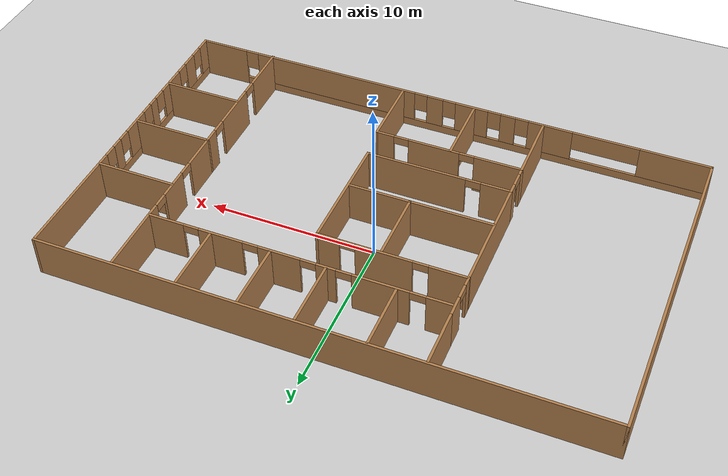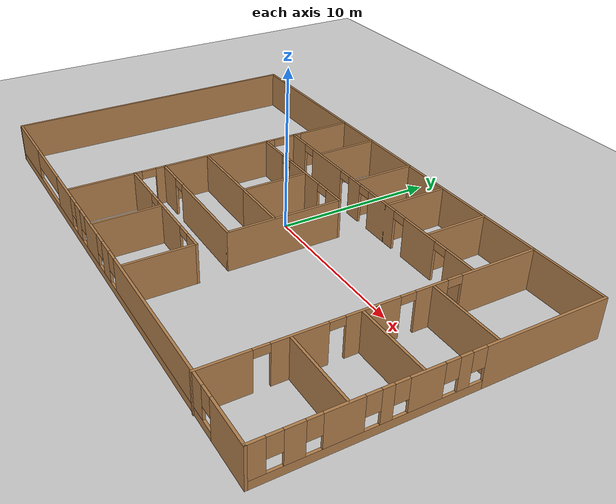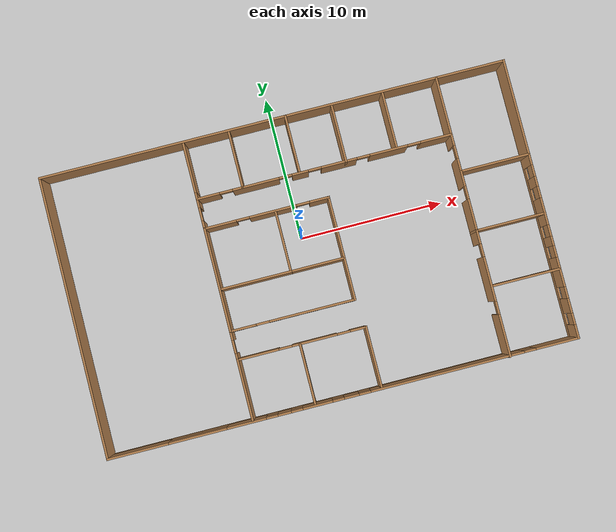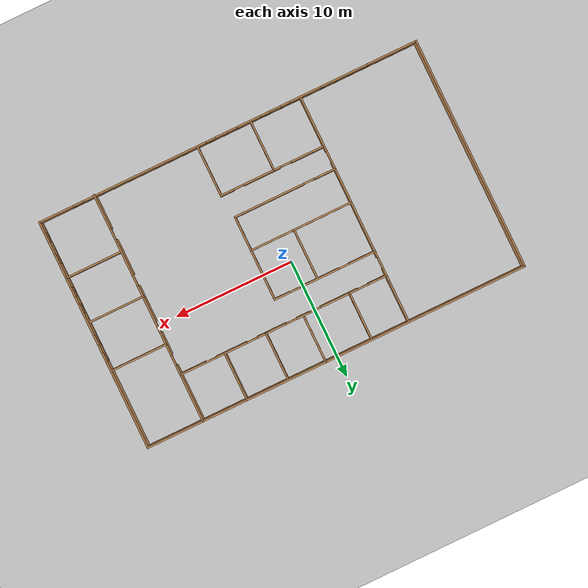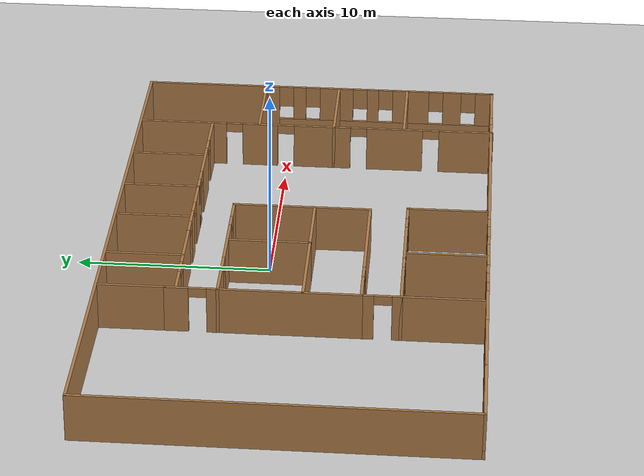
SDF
<sdf version="1.6">
 <world name="default">
  <model name="ground_plane">
   <static>1</static>
   <link name="link">
    <collision name="collision">
     <geometry><plane><normal>0 0 1</normal><size>100 100</size></plane></geometry>
     <surface><friction><ode><mu>100</mu><mu2>50</mu2></ode></friction></surface>
    </collision>
    <visual name="visual">
     <cast_shadows>0</cast_shadows>
     <geometry><plane><normal>0 0 1</normal><size>100 100</size></plane></geometry>
     <material>
      <script><uri>file://media/materials/scripts/gazebo.material</uri><name>Gazebo/Grey</name></script>
     </material>
    </visual>
   </link>
  </model>
  <model name="Offices">
   <pose>0.0747 -1.55761 0 0 -0 0</pose>
   <link name="Wall_18">
    <collision name="Wall_18_Collision">
     <geometry><box><size>19.5 0.15 2.5</size></box></geometry>
     <pose>0 0 1.25 0 -0 0</pose>
    </collision>
    <visual name="Wall_18_Visual">
     <pose>0 0 1.25 0 -0 0</pose>
     <geometry><box><size>19.5 0.15 2.5</size></box></geometry>
     <material>
      <script><uri>file://media/materials/scripts/gazebo.material</uri><name>Gazebo/Wood</name></script>
      <ambient>1 1 1 1</ambient>
     </material>
     <meta><layer>0</layer></meta>
    </visual>
    <pose>-16.175 0.026818 0 0 -0 1.5708</pose>
   </link>
   <link name="Wall_19">
    <collision name="Wall_19_Collision">
     <geometry><box><size>32.5 0.15 2.5</size></box></geometry>
     <pose>0 0 1.25 0 -0 0</pose>
    </collision>
    <visual name="Wall_19_Visual">
     <pose>0 0 1.25 0 -0 0</pose>
     <geometry><box><size>32.5 0.15 2.5</size></box></geometry>
     <material>
      <script><uri>file://media/materials/scripts/gazebo.material</uri><name>Gazebo/Wood</name></script>
      <ambient>1 1 1 1</ambient>
     </material>
     <meta><layer>0</layer></meta>
    </visual>
    <pose>0 9.70182 0 0 -0 0</pose>
   </link>
   <link name="Wall_20">
    <pose>16.175 0.026818 0 0 0 -1.5708</pose>
    <visual name="Wall_20_Visual_0">
     <pose>-6.04317 0 1.25 0 -0 0</pose>
     <geometry><box><size>7.41367 0.15 2.5</size></box></geometry>
     <material>
      <script><uri>file://media/materials/scripts/gazebo.material</uri><name>Gazebo/Wood</name></script>
      <ambient>1 1 1 1</ambient>
     </material>
     <meta><layer>0</layer></meta>
    </visual>
    <collision name="Wall_20_Collision_0">
     <geometry><box><size>7.41367 0.15 2.5</size></box></geometry>
     <pose>-6.04317 0 1.25 0 -0 0</pose>
    </collision>
    <visual name="Wall_20_Visual_1">
     <pose>3.70683 0 0.25 0 -0 0</pose>
     <geometry><box><size>12.0863 0.15 0.5</size></box></geometry>
     <material>
      <script><uri>file://media/materials/scripts/gazebo.material</uri><name>Gazebo/Wood</name></script>
      <ambient>1 1 1 1</ambient>
     </material>
     <meta><layer>0</layer></meta>
    </visual>
    <collision name="Wall_20_Collision_1">
     <geometry><box><size>12.0863 0.15 0.5</size></box></geometry>
     <pose>3.70683 0 0.25 0 -0 0</pose>
    </collision>
    <visual name="Wall_20_Visual_2">
     <pose>-1.18542 0 1.5 0 -0 0</pose>
     <geometry><box><size>0.701813 0.15 2</size></box></geometry>
     <material>
      <script><uri>file://media/materials/scripts/gazebo.material</uri><name>Gazebo/Wood</name></script>
      <ambient>1 1 1 1</ambient>
     </material>
     <meta><layer>0</layer></meta>
    </visual>
    <collision name="Wall_20_Collision_2">
     <geometry><box><size>0.701813 0.15 2</size></box></geometry>
     <pose>-1.18542 0 1.5 0 -0 0</pose>
    </collision>
    <visual name="Wall_20_Visual_3">
     <pose>0.906388 0 1.5 0 -0 0</pose>
     <geometry><box><size>1.88181 0.15 2</size></box></geometry>
     <material>
      <script><uri>file://media/materials/scripts/gazebo.material</uri><name>Gazebo/Wood</name></script>
      <ambient>1 1 1 1</ambient>
     </material>
     <meta><layer>0</layer></meta>
    </visual>
    <collision name="Wall_20_Collision_3">
     <geometry><box><size>1.88181 0.15 2</size></box></geometry>
     <pose>0.906388 0 1.5 0 -0 0</pose>
    </collision>
    <visual name="Wall_20_Visual_4">
     <pose>2.97138 0 1.5 0 -0 0</pose>
     <geometry><box><size>0.648177 0.15 2</size></box></geometry>
     <material>
      <script><uri>file://media/materials/scripts/gazebo.material</uri><name>Gazebo/Wood</name></script>
      <ambient>1 1 1 1</ambient>
     </material>
     <meta><layer>0</layer></meta>
    </visual>
    <collision name="Wall_20_Collision_4">
     <geometry><box><size>0.648177 0.15 2</size></box></geometry>
     <pose>2.97138 0 1.5 0 -0 0</pose>
    </collision>
    <visual name="Wall_20_Visual_5">
     <pose>5.11683 0 1.5 0 -0 0</pose>
     <geometry><box><size>2.04272 0.15 2</size></box></geometry>
     <material>
      <script><uri>file://media/materials/scripts/gazebo.material</uri><name>Gazebo/Wood</name></script>
      <ambient>1 1 1 1</ambient>
     </material>
     <meta><layer>0</layer></meta>
    </visual>
    <collision name="Wall_20_Collision_5">
     <geometry><box><size>2.04272 0.15 2</size></box></geometry>
     <pose>5.11683 0 1.5 0 -0 0</pose>
    </collision>
    <visual name="Wall_20_Visual_6">
     <pose>7.45 0 1.5 0 -0 0</pose>
     <geometry><box><size>1.02363 0.15 2</size></box></geometry>
     <material>
      <script><uri>file://media/materials/scripts/gazebo.material</uri><name>Gazebo/Wood</name></script>
      <ambient>1 1 1 1</ambient>
     </material>
     <meta><layer>0</layer></meta>
    </visual>
    <collision name="Wall_20_Collision_6">
     <geometry><box><size>1.02363 0.15 2</size></box></geometry>
     <pose>7.45 0 1.5 0 -0 0</pose>
    </collision>
    <visual name="Wall_20_Visual_7">
     <pose>9.25591 0 1.5 0 -0 0</pose>
     <geometry><box><size>0.988181 0.15 2</size></box></geometry>
     <material>
      <script><uri>file://media/materials/scripts/gazebo.material</uri><name>Gazebo/Wood</name></script>
      <ambient>1 1 1 1</ambient>
     </material>
     <meta><layer>0</layer></meta>
    </visual>
    <collision name="Wall_20_Collision_7">
     <geometry><box><size>0.988181 0.15 2</size></box></geometry>
     <pose>9.25591 0 1.5 0 -0 0</pose>
    </collision>
    <visual name="Wall_20_Visual_8">
     <pose>-1.93633 0 1.9 0 -0 0</pose>
     <geometry><box><size>0.8 0.15 1.2</size></box></geometry>
     <material>
      <script><uri>file://media/materials/scripts/gazebo.material</uri><name>Gazebo/Wood</name></script>
      <ambient>1 1 1 1</ambient>
     </material>
     <meta><layer>0</layer></meta>
    </visual>
    <collision name="Wall_20_Collision_8">
     <geometry><box><size>0.8 0.15 1.2</size></box></geometry>
     <pose>-1.93633 0 1.9 0 -0 0</pose>
    </collision>
    <visual name="Wall_20_Visual_9">
     <pose>-0.434516 0 1.9 0 -0 0</pose>
     <geometry><box><size>0.8 0.15 1.2</size></box></geometry>
     <material>
      <script><uri>file://media/materials/scripts/gazebo.material</uri><name>Gazebo/Wood</name></script>
      <ambient>1 1 1 1</ambient>
     </material>
     <meta><layer>0</layer></meta>
    </visual>
    <collision name="Wall_20_Collision_9">
     <geometry><box><size>0.8 0.15 1.2</size></box></geometry>
     <pose>-0.434516 0 1.9 0 -0 0</pose>
    </collision>
    <visual name="Wall_20_Visual_10">
     <pose>2.24729 0 1.9 0 -0 0</pose>
     <geometry><box><size>0.8 0.15 1.2</size></box></geometry>
     <material>
      <script><uri>file://media/materials/scripts/gazebo.material</uri><name>Gazebo/Wood</name></script>
      <ambient>1 1 1 1</ambient>
     </material>
     <meta><layer>0</layer></meta>
    </visual>
    <collision name="Wall_20_Collision_10">
     <geometry><box><size>0.8 0.15 1.2</size></box></geometry>
     <pose>2.24729 0 1.9 0 -0 0</pose>
    </collision>
    <visual name="Wall_20_Visual_11">
     <pose>3.69547 0 1.9 0 -0 0</pose>
     <geometry><box><size>0.8 0.15 1.2</size></box></geometry>
     <material>
      <script><uri>file://media/materials/scripts/gazebo.material</uri><name>Gazebo/Wood</name></script>
      <ambient>1 1 1 1</ambient>
     </material>
     <meta><layer>0</layer></meta>
    </visual>
    <collision name="Wall_20_Collision_11">
     <geometry><box><size>0.8 0.15 1.2</size></box></geometry>
     <pose>3.69547 0 1.9 0 -0 0</pose>
    </collision>
    <visual name="Wall_20_Visual_12">
     <pose>6.53819 0 1.9 0 -0 0</pose>
     <geometry><box><size>0.8 0.15 1.2</size></box></geometry>
     <material>
      <script><uri>file://media/materials/scripts/gazebo.material</uri><name>Gazebo/Wood</name></script>
      <ambient>1 1 1 1</ambient>
     </material>
     <meta><layer>0</layer></meta>
    </visual>
    <collision name="Wall_20_Collision_12">
     <geometry><box><size>0.8 0.15 1.2</size></box></geometry>
     <pose>6.53819 0 1.9 0 -0 0</pose>
    </collision>
    <visual name="Wall_20_Visual_13">
     <pose>8.36182 0 1.9 0 -0 0</pose>
     <geometry><box><size>0.8 0.15 1.2</size></box></geometry>
     <material>
      <script><uri>file://media/materials/scripts/gazebo.material</uri><name>Gazebo/Wood</name></script>
      <ambient>1 1 1 1</ambient>
     </material>
     <meta><layer>0</layer></meta>
    </visual>
    <collision name="Wall_20_Collision_13">
     <geometry><box><size>0.8 0.15 1.2</size></box></geometry>
     <pose>8.36182 0 1.9 0 -0 0</pose>
    </collision>
   </link>
   <link name="Wall_21">
    <pose>0 -9.64818 0 0 -0 3.14159</pose>
    <visual name="Wall_21_Visual_0">
     <pose>-14.7397 0 1.25 0 -0 0</pose>
     <geometry><box><size>3.02057 0.15 2.5</size></box></geometry>
     <material>
      <script><uri>file://media/materials/scripts/gazebo.material</uri><name>Gazebo/Wood</name></script>
      <ambient>1 1 1 1</ambient>
     </material>
     <meta><layer>0</layer></meta>
    </visual>
    <collision name="Wall_21_Collision_0">
     <geometry><box><size>3.02057 0.15 2.5</size></box></geometry>
     <pose>-14.7397 0 1.25 0 -0 0</pose>
    </collision>
    <visual name="Wall_21_Visual_1">
     <pose>1.51029 0 0.25 0 -0 0</pose>
     <geometry><box><size>29.4794 0.15 0.5</size></box></geometry>
     <material>
      <script><uri>file://media/materials/scripts/gazebo.material</uri><name>Gazebo/Wood</name></script>
      <ambient>1 1 1 1</ambient>
     </material>
     <meta><layer>0</layer></meta>
    </visual>
    <collision name="Wall_21_Collision_1">
     <geometry><box><size>29.4794 0.15 0.5</size></box></geometry>
     <pose>1.51029 0 0.25 0 -0 0</pose>
    </collision>
    <visual name="Wall_21_Visual_2">
     <pose>-7.14399 0 1.5 0 -0 0</pose>
     <geometry><box><size>10.5709 0.15 2</size></box></geometry>
     <material>
      <script><uri>file://media/materials/scripts/gazebo.material</uri><name>Gazebo/Wood</name></script>
      <ambient>1 1 1 1</ambient>
     </material>
     <meta><layer>0</layer></meta>
    </visual>
    <collision name="Wall_21_Collision_2">
     <geometry><box><size>10.5709 0.15 2</size></box></geometry>
     <pose>-7.14399 0 1.5 0 -0 0</pose>
    </collision>
    <visual name="Wall_21_Visual_3">
     <pose>-0.546741 0 1.5 0 -0 0</pose>
     <geometry><box><size>1.02363 0.15 2</size></box></geometry>
     <material>
      <script><uri>file://media/materials/scripts/gazebo.material</uri><name>Gazebo/Wood</name></script>
      <ambient>1 1 1 1</ambient>
     </material>
     <meta><layer>0</layer></meta>
    </visual>
    <collision name="Wall_21_Collision_3">
     <geometry><box><size>1.02363 0.15 2</size></box></geometry>
     <pose>-0.546741 0 1.5 0 -0 0</pose>
    </collision>
    <visual name="Wall_21_Visual_4">
     <pose>1.78643 0 1.5 0 -0 0</pose>
     <geometry><box><size>2.04272 0.15 2</size></box></geometry>
     <material>
      <script><uri>file://media/materials/scripts/gazebo.material</uri><name>Gazebo/Wood</name></script>
      <ambient>1 1 1 1</ambient>
     </material>
     <meta><layer>0</layer></meta>
    </visual>
    <collision name="Wall_21_Collision_4">
     <geometry><box><size>2.04272 0.15 2</size></box></geometry>
     <pose>1.78643 0 1.5 0 -0 0</pose>
    </collision>
    <visual name="Wall_21_Visual_5">
     <pose>4.06597 0 1.5 0 -0 0</pose>
     <geometry><box><size>0.916358 0.15 2</size></box></geometry>
     <material>
      <script><uri>file://media/materials/scripts/gazebo.material</uri><name>Gazebo/Wood</name></script>
      <ambient>1 1 1 1</ambient>
     </material>
     <meta><layer>0</layer></meta>
    </visual>
    <collision name="Wall_21_Collision_5">
     <geometry><box><size>0.916358 0.15 2</size></box></geometry>
     <pose>4.06597 0 1.5 0 -0 0</pose>
    </collision>
    <visual name="Wall_21_Visual_6">
     <pose>6.67187 0 1.5 0 -0 0</pose>
     <geometry><box><size>2.69544 0.15 2</size></box></geometry>
     <material>
      <script><uri>file://media/materials/scripts/gazebo.material</uri><name>Gazebo/Wood</name></script>
      <ambient>1 1 1 1</ambient>
     </material>
     <meta><layer>0</layer></meta>
    </visual>
    <collision name="Wall_21_Collision_6">
     <geometry><box><size>2.69544 0.15 2</size></box></geometry>
     <pose>6.67187 0 1.5 0 -0 0</pose>
    </collision>
    <visual name="Wall_21_Visual_7">
     <pose>14.1348 0 1.5 0 -0 0</pose>
     <geometry><box><size>4.23041 0.15 2</size></box></geometry>
     <material>
      <script><uri>file://media/materials/scripts/gazebo.material</uri><name>Gazebo/Wood</name></script>
      <ambient>1 1 1 1</ambient>
     </material>
     <meta><layer>0</layer></meta>
    </visual>
    <collision name="Wall_21_Collision_7">
     <geometry><box><size>4.23041 0.15 2</size></box></geometry>
     <pose>14.1348 0 1.5 0 -0 0</pose>
    </collision>
    <visual name="Wall_21_Visual_8">
     <pose>-12.8294 0 1.9 0 -0 0</pose>
     <geometry><box><size>0.8 0.15 1.2</size></box></geometry>
     <material>
      <script><uri>file://media/materials/scripts/gazebo.material</uri><name>Gazebo/Wood</name></script>
      <ambient>1 1 1 1</ambient>
     </material>
     <meta><layer>0</layer></meta>
    </visual>
    <collision name="Wall_21_Collision_8">
     <geometry><box><size>0.8 0.15 1.2</size></box></geometry>
     <pose>-12.8294 0 1.9 0 -0 0</pose>
    </collision>
    <visual name="Wall_21_Visual_9">
     <pose>-1.45856 0 1.9 0 -0 0</pose>
     <geometry><box><size>0.8 0.15 1.2</size></box></geometry>
     <material>
      <script><uri>file://media/materials/scripts/gazebo.material</uri><name>Gazebo/Wood</name></script>
      <ambient>1 1 1 1</ambient>
     </material>
     <meta><layer>0</layer></meta>
    </visual>
    <collision name="Wall_21_Collision_9">
     <geometry><box><size>0.8 0.15 1.2</size></box></geometry>
     <pose>-1.45856 0 1.9 0 -0 0</pose>
    </collision>
    <visual name="Wall_21_Visual_10">
     <pose>0.365075 0 1.9 0 -0 0</pose>
     <geometry><box><size>0.8 0.15 1.2</size></box></geometry>
     <material>
      <script><uri>file://media/materials/scripts/gazebo.material</uri><name>Gazebo/Wood</name></script>
      <ambient>1 1 1 1</ambient>
     </material>
     <meta><layer>0</layer></meta>
    </visual>
    <collision name="Wall_21_Collision_10">
     <geometry><box><size>0.8 0.15 1.2</size></box></geometry>
     <pose>0.365075 0 1.9 0 -0 0</pose>
    </collision>
    <visual name="Wall_21_Visual_11">
     <pose>3.20779 0 1.9 0 -0 0</pose>
     <geometry><box><size>0.8 0.15 1.2</size></box></geometry>
     <material>
      <script><uri>file://media/materials/scripts/gazebo.material</uri><name>Gazebo/Wood</name></script>
      <ambient>1 1 1 1</ambient>
     </material>
     <meta><layer>0</layer></meta>
    </visual>
    <collision name="Wall_21_Collision_11">
     <geometry><box><size>0.8 0.15 1.2</size></box></geometry>
     <pose>3.20779 0 1.9 0 -0 0</pose>
    </collision>
    <visual name="Wall_21_Visual_12">
     <pose>4.92415 0 1.9 0 -0 0</pose>
     <geometry><box><size>0.8 0.15 1.2</size></box></geometry>
     <material>
      <script><uri>file://media/materials/scripts/gazebo.material</uri><name>Gazebo/Wood</name></script>
      <ambient>1 1 1 1</ambient>
     </material>
     <meta><layer>0</layer></meta>
    </visual>
    <collision name="Wall_21_Collision_12">
     <geometry><box><size>0.8 0.15 1.2</size></box></geometry>
     <pose>4.92415 0 1.9 0 -0 0</pose>
    </collision>
    <visual name="Wall_21_Visual_13">
     <pose>10.0196 0 1.9 0 -0 0</pose>
     <geometry><box><size>4 0.15 1.2</size></box></geometry>
     <material>
      <script><uri>file://media/materials/scripts/gazebo.material</uri><name>Gazebo/Wood</name></script>
      <ambient>1 1 1 1</ambient>
     </material>
     <meta><layer>0</layer></meta>
    </visual>
    <collision name="Wall_21_Collision_13">
     <geometry><box><size>4 0.15 1.2</size></box></geometry>
     <pose>10.0196 0 1.9 0 -0 0</pose>
    </collision>
   </link>
   <link name="Wall_24">
    <pose>11.4476 -0.026818 0 0 -0 1.5708</pose>
    <visual name="Wall_24_Visual_0">
     <pose>-8.26182 0 1.25 0 -0 0</pose>
     <geometry><box><size>2.97636 0.15 2.5</size></box></geometry>
     <material>
      <script><uri>file://media/materials/scripts/gazebo.material</uri><name>Gazebo/Wood</name></script>
      <ambient>1 1 1 1</ambient>
     </material>
     <meta><layer>0</layer></meta>
    </visual>
    <collision name="Wall_24_Collision_0">
     <geometry><box><size>2.97636 0.15 2.5</size></box></geometry>
     <pose>-8.26182 0 1.25 0 -0 0</pose>
    </collision>
    <visual name="Wall_24_Visual_1">
     <pose>-4.3391 0 1.25 0 -0 0</pose>
     <geometry><box><size>3.06908 0.15 2.5</size></box></geometry>
     <material>
      <script><uri>file://media/materials/scripts/gazebo.material</uri><name>Gazebo/Wood</name></script>
      <ambient>1 1 1 1</ambient>
     </material>
     <meta><layer>0</layer></meta>
    </visual>
    <collision name="Wall_24_Collision_1">
     <geometry><box><size>3.06908 0.15 2.5</size></box></geometry>
     <pose>-4.3391 0 1.25 0 -0 0</pose>
    </collision>
    <visual name="Wall_24_Visual_2">
     <pose>-0.343209 0 1.25 0 -0 0</pose>
     <geometry><box><size>3.12271 0.15 2.5</size></box></geometry>
     <material>
      <script><uri>file://media/materials/scripts/gazebo.material</uri><name>Gazebo/Wood</name></script>
      <ambient>1 1 1 1</ambient>
     </material>
     <meta><layer>0</layer></meta>
    </visual>
    <collision name="Wall_24_Collision_2">
     <geometry><box><size>3.12271 0.15 2.5</size></box></geometry>
     <pose>-0.343209 0 1.25 0 -0 0</pose>
    </collision>
    <visual name="Wall_24_Visual_3">
     <pose>3.08951 0 1.25 0 -0 0</pose>
     <geometry><box><size>1.94272 0.15 2.5</size></box></geometry>
     <material>
      <script><uri>file://media/materials/scripts/gazebo.material</uri><name>Gazebo/Wood</name></script>
      <ambient>1 1 1 1</ambient>
     </material>
     <meta><layer>0</layer></meta>
    </visual>
    <collision name="Wall_24_Collision_3">
     <geometry><box><size>1.94272 0.15 2.5</size></box></geometry>
     <pose>3.08951 0 1.25 0 -0 0</pose>
    </collision>
    <visual name="Wall_24_Visual_4">
     <pose>7.35543 0 1.25 0 -0 0</pose>
     <geometry><box><size>4.78913 0.15 2.5</size></box></geometry>
     <material>
      <script><uri>file://media/materials/scripts/gazebo.material</uri><name>Gazebo/Wood</name></script>
      <ambient>1 1 1 1</ambient>
     </material>
     <meta><layer>0</layer></meta>
    </visual>
    <collision name="Wall_24_Collision_4">
     <geometry><box><size>4.78913 0.15 2.5</size></box></geometry>
     <pose>7.35543 0 1.25 0 -0 0</pose>
    </collision>
    <visual name="Wall_24_Visual_5">
     <pose>-6.32364 0 2.25 0 -0 0</pose>
     <geometry><box><size>0.9 0.15 0.5</size></box></geometry>
     <material>
      <script><uri>file://media/materials/scripts/gazebo.material</uri><name>Gazebo/Wood</name></script>
      <ambient>1 1 1 1</ambient>
     </material>
     <meta><layer>0</layer></meta>
    </visual>
    <collision name="Wall_24_Collision_5">
     <geometry><box><size>0.9 0.15 0.5</size></box></geometry>
     <pose>-6.32364 0 2.25 0 -0 0</pose>
    </collision>
    <visual name="Wall_24_Visual_6">
     <pose>-2.35457 0 2.25 0 -0 0</pose>
     <geometry><box><size>0.9 0.15 0.5</size></box></geometry>
     <material>
      <script><uri>file://media/materials/scripts/gazebo.material</uri><name>Gazebo/Wood</name></script>
      <ambient>1 1 1 1</ambient>
     </material>
     <meta><layer>0</layer></meta>
    </visual>
    <collision name="Wall_24_Collision_6">
     <geometry><box><size>0.9 0.15 0.5</size></box></geometry>
     <pose>-2.35457 0 2.25 0 -0 0</pose>
    </collision>
    <visual name="Wall_24_Visual_7">
     <pose>1.66815 0 2.25 0 -0 0</pose>
     <geometry><box><size>0.9 0.15 0.5</size></box></geometry>
     <material>
      <script><uri>file://media/materials/scripts/gazebo.material</uri><name>Gazebo/Wood</name></script>
      <ambient>1 1 1 1</ambient>
     </material>
     <meta><layer>0</layer></meta>
    </visual>
    <collision name="Wall_24_Collision_7">
     <geometry><box><size>0.9 0.15 0.5</size></box></geometry>
     <pose>1.66815 0 2.25 0 -0 0</pose>
    </collision>
    <visual name="Wall_24_Visual_8">
     <pose>4.51087 0 2.25 0 -0 0</pose>
     <geometry><box><size>0.9 0.15 0.5</size></box></geometry>
     <material>
      <script><uri>file://media/materials/scripts/gazebo.material</uri><name>Gazebo/Wood</name></script>
      <ambient>1 1 1 1</ambient>
     </material>
     <meta><layer>0</layer></meta>
    </visual>
    <collision name="Wall_24_Collision_8">
     <geometry><box><size>0.9 0.15 0.5</size></box></geometry>
     <pose>4.51087 0 2.25 0 -0 0</pose>
    </collision>
   </link>
   <link name="Wall_26">
    <collision name="Wall_26_Collision">
     <geometry><box><size>4.75 0.15 2.5</size></box></geometry>
     <pose>0 0 1.25 0 -0 0</pose>
    </collision>
    <visual name="Wall_26_Visual">
     <pose>0 0 1.25 0 -0 0</pose>
     <geometry><box><size>4.75 0.15 2.5</size></box></geometry>
     <material>
      <script><uri>file://media/materials/scripts/gazebo.material</uri><name>Gazebo/Wood</name></script>
      <ambient>1 1 1 1</ambient>
     </material>
     <meta><layer>0</layer></meta>
    </visual>
    <pose>13.8013 -4.87456 0 0 -0 0</pose>
   </link>
   <link name="Wall_28">
    <collision name="Wall_28_Collision">
     <geometry><box><size>4.75 0.15 2.5</size></box></geometry>
     <pose>0 0 1.25 0 -0 0</pose>
    </collision>
    <visual name="Wall_28_Visual">
     <pose>0 0 1.25 0 -0 0</pose>
     <geometry><box><size>4.75 0.15 2.5</size></box></geometry>
     <material>
      <script><uri>file://media/materials/scripts/gazebo.material</uri><name>Gazebo/Wood</name></script>
      <ambient>1 1 1 1</ambient>
     </material>
     <meta><layer>0</layer></meta>
    </visual>
    <pose>13.7476 -1.01276 0 0 -0 0</pose>
   </link>
   <link name="Wall_30">
    <collision name="Wall_30_Collision">
     <geometry><box><size>4.75 0.15 2.5</size></box></geometry>
     <pose>0 0 1.25 0 -0 0</pose>
    </collision>
    <visual name="Wall_30_Visual">
     <pose>0 0 1.25 0 -0 0</pose>
     <geometry><box><size>4.75 0.15 2.5</size></box></geometry>
     <material>
      <script><uri>file://media/materials/scripts/gazebo.material</uri><name>Gazebo/Wood</name></script>
      <ambient>1 1 1 1</ambient>
     </material>
     <meta><layer>0</layer></meta>
    </visual>
    <pose>13.8013 3.11723 0 0 -0 0</pose>
   </link>
   <link name="Wall_32">
    <collision name="Wall_32_Collision">
     <geometry><box><size>4.25 0.15 2.5</size></box></geometry>
     <pose>0 0 1.25 0 -0 0</pose>
    </collision>
    <visual name="Wall_32_Visual">
     <pose>0 0 1.25 0 -0 0</pose>
     <geometry><box><size>4.25 0.15 2.5</size></box></geometry>
     <material>
      <script><uri>file://media/materials/scripts/gazebo.material</uri><name>Gazebo/Wood</name></script>
      <ambient>1 1 1 1</ambient>
     </material>
     <meta><layer>0</layer></meta>
    </visual>
    <pose>2.61644 -7.47291 0 0 -0 1.5708</pose>
   </link>
   <link name="Wall_33">
    <pose>-1.80856 -5.42291 0 0 -0 3.14159</pose>
    <visual name="Wall_33_Visual_0">
     <pose>-3.92083 0 1.25 0 -0 0</pose>
     <geometry><box><size>1.15834 0.15 2.5</size></box></geometry>
     <material>
      <script><uri>file://media/materials/scripts/gazebo.material</uri><name>Gazebo/Wood</name></script>
      <ambient>1 1 1 1</ambient>
     </material>
     <meta><layer>0</layer></meta>
    </visual>
    <collision name="Wall_33_Collision_0">
     <geometry><box><size>1.15834 0.15 2.5</size></box></geometry>
     <pose>-3.92083 0 1.25 0 -0 0</pose>
    </collision>
    <visual name="Wall_33_Visual_1">
     <pose>-0.880306 0 1.25 0 -0 0</pose>
     <geometry><box><size>3.12271 0.15 2.5</size></box></geometry>
     <material>
      <script><uri>file://media/materials/scripts/gazebo.material</uri><name>Gazebo/Wood</name></script>
      <ambient>1 1 1 1</ambient>
     </material>
     <meta><layer>0</layer></meta>
    </visual>
    <collision name="Wall_33_Collision_1">
     <geometry><box><size>3.12271 0.15 2.5</size></box></geometry>
     <pose>-0.880306 0 1.25 0 -0 0</pose>
    </collision>
    <visual name="Wall_33_Visual_2">
     <pose>3.04053 0 1.25 0 -0 0</pose>
     <geometry><box><size>2.91895 0.15 2.5</size></box></geometry>
     <material>
      <script><uri>file://media/materials/scripts/gazebo.material</uri><name>Gazebo/Wood</name></script>
      <ambient>1 1 1 1</ambient>
     </material>
     <meta><layer>0</layer></meta>
    </visual>
    <collision name="Wall_33_Collision_2">
     <geometry><box><size>2.91895 0.15 2.5</size></box></geometry>
     <pose>3.04053 0 1.25 0 -0 0</pose>
    </collision>
    <visual name="Wall_33_Visual_3">
     <pose>-2.89166 0 2.25 0 -0 0</pose>
     <geometry><box><size>0.9 0.15 0.5</size></box></geometry>
     <material>
      <script><uri>file://media/materials/scripts/gazebo.material</uri><name>Gazebo/Wood</name></script>
      <ambient>1 1 1 1</ambient>
     </material>
     <meta><layer>0</layer></meta>
    </visual>
    <collision name="Wall_33_Collision_3">
     <geometry><box><size>0.9 0.15 0.5</size></box></geometry>
     <pose>-2.89166 0 2.25 0 -0 0</pose>
    </collision>
    <visual name="Wall_33_Visual_4">
     <pose>1.13105 0 2.25 0 -0 0</pose>
     <geometry><box><size>0.9 0.15 0.5</size></box></geometry>
     <material>
      <script><uri>file://media/materials/scripts/gazebo.material</uri><name>Gazebo/Wood</name></script>
      <ambient>1 1 1 1</ambient>
     </material>
     <meta><layer>0</layer></meta>
    </visual>
    <collision name="Wall_33_Collision_4">
     <geometry><box><size>0.9 0.15 0.5</size></box></geometry>
     <pose>1.13105 0 2.25 0 -0 0</pose>
    </collision>
   </link>
   <link name="Wall_34">
    <collision name="Wall_34_Collision">
     <geometry><box><size>4.25 0.15 2.5</size></box></geometry>
     <pose>0 0 1.25 0 -0 0</pose>
    </collision>
    <visual name="Wall_34_Visual">
     <pose>0 0 1.25 0 -0 0</pose>
     <geometry><box><size>4.25 0.15 2.5</size></box></geometry>
     <material>
      <script><uri>file://media/materials/scripts/gazebo.material</uri><name>Gazebo/Wood</name></script>
      <ambient>1 1 1 1</ambient>
     </material>
     <meta><layer>0</layer></meta>
    </visual>
    <pose>-6.23356 -7.47291 0 0 0 -1.5708</pose>
   </link>
   <link name="Wall_38">
    <collision name="Wall_38_Collision">
     <geometry><box><size>4.25 0.15 2.5</size></box></geometry>
     <pose>0 0 1.25 0 -0 0</pose>
    </collision>
    <visual name="Wall_38_Visual">
     <pose>0 0 1.25 0 -0 0</pose>
     <geometry><box><size>4.25 0.15 2.5</size></box></geometry>
     <material>
      <script><uri>file://media/materials/scripts/gazebo.material</uri><name>Gazebo/Wood</name></script>
      <ambient>1 1 1 1</ambient>
     </material>
     <meta><layer>0</layer></meta>
    </visual>
    <pose>-1.94264 -7.49656 0 0 0 -1.5708</pose>
   </link>
   <link name="Wall_40">
    <pose>-1.93353 -3.46202 0 0 -0 0</pose>
    <visual name="Wall_40_Visual_0">
     <pose>-3.4519 0 1.25 0 -0 0</pose>
     <geometry><box><size>1.8462 0.15 2.5</size></box></geometry>
     <material>
      <script><uri>file://media/materials/scripts/gazebo.material</uri><name>Gazebo/Wood</name></script>
      <ambient>1 1 1 1</ambient>
     </material>
     <meta><layer>0</layer></meta>
    </visual>
    <collision name="Wall_40_Collision_0">
     <geometry><box><size>1.8462 0.15 2.5</size></box></geometry>
     <pose>-3.4519 0 1.25 0 -0 0</pose>
    </collision>
    <visual name="Wall_40_Visual_1">
     <pose>1.3731 0 1.25 0 -0 0</pose>
     <geometry><box><size>6.0038 0.15 2.5</size></box></geometry>
     <material>
      <script><uri>file://media/materials/scripts/gazebo.material</uri><name>Gazebo/Wood</name></script>
      <ambient>1 1 1 1</ambient>
     </material>
     <meta><layer>0</layer></meta>
    </visual>
    <collision name="Wall_40_Collision_1">
     <geometry><box><size>6.0038 0.15 2.5</size></box></geometry>
     <pose>1.3731 0 1.25 0 -0 0</pose>
    </collision>
    <visual name="Wall_40_Visual_2">
     <pose>-2.0788 0 2.25 0 -0 0</pose>
     <geometry><box><size>0.9 0.15 0.5</size></box></geometry>
     <material>
      <script><uri>file://media/materials/scripts/gazebo.material</uri><name>Gazebo/Wood</name></script>
      <ambient>1 1 1 1</ambient>
     </material>
     <meta><layer>0</layer></meta>
    </visual>
    <collision name="Wall_40_Collision_2">
     <geometry><box><size>0.9 0.15 0.5</size></box></geometry>
     <pose>-2.0788 0 2.25 0 -0 0</pose>
    </collision>
   </link>
   <link name="Wall_49">
    <collision name="Wall_49_Collision">
     <geometry><box><size>7.25 0.15 2.5</size></box></geometry>
     <pose>0 0 1.25 0 -0 0</pose>
    </collision>
    <visual name="Wall_49_Visual">
     <pose>0 0 1.25 0 -0 0</pose>
     <geometry><box><size>7.25 0.15 2.5</size></box></geometry>
     <material>
      <script><uri>file://media/materials/scripts/gazebo.material</uri><name>Gazebo/Wood</name></script>
      <ambient>1 1 1 1</ambient>
     </material>
     <meta><layer>0</layer></meta>
    </visual>
    <pose>2.36647 0.08798 0 0 -0 1.5708</pose>
   </link>
   <link name="Wall_50">
    <pose>-1.93353 3.63798 0 0 -0 3.14159</pose>
    <visual name="Wall_50_Visual_0">
     <pose>-3.67945 0 1.25 0 -0 0</pose>
     <geometry><box><size>1.39109 0.15 2.5</size></box></geometry>
     <material>
      <script><uri>file://media/materials/scripts/gazebo.material</uri><name>Gazebo/Wood</name></script>
      <ambient>1 1 1 1</ambient>
     </material>
     <meta><layer>0</layer></meta>
    </visual>
    <collision name="Wall_50_Collision_0">
     <geometry><box><size>1.39109 0.15 2.5</size></box></geometry>
     <pose>-3.67945 0 1.25 0 -0 0</pose>
    </collision>
    <visual name="Wall_50_Visual_1">
     <pose>-0.442097 0 1.25 0 -0 0</pose>
     <geometry><box><size>3.28362 0.15 2.5</size></box></geometry>
     <material>
      <script><uri>file://media/materials/scripts/gazebo.material</uri><name>Gazebo/Wood</name></script>
      <ambient>1 1 1 1</ambient>
     </material>
     <meta><layer>0</layer></meta>
    </visual>
    <collision name="Wall_50_Collision_1">
     <geometry><box><size>3.28362 0.15 2.5</size></box></geometry>
     <pose>-0.442097 0 1.25 0 -0 0</pose>
    </collision>
    <visual name="Wall_50_Visual_2">
     <pose>3.23736 0 1.25 0 -0 0</pose>
     <geometry><box><size>2.27529 0.15 2.5</size></box></geometry>
     <material>
      <script><uri>file://media/materials/scripts/gazebo.material</uri><name>Gazebo/Wood</name></script>
      <ambient>1 1 1 1</ambient>
     </material>
     <meta><layer>0</layer></meta>
    </visual>
    <collision name="Wall_50_Collision_2">
     <geometry><box><size>2.27529 0.15 2.5</size></box></geometry>
     <pose>3.23736 0 1.25 0 -0 0</pose>
    </collision>
    <visual name="Wall_50_Visual_3">
     <pose>-2.53391 0 2.25 0 -0 0</pose>
     <geometry><box><size>0.9 0.15 0.5</size></box></geometry>
     <material>
      <script><uri>file://media/materials/scripts/gazebo.material</uri><name>Gazebo/Wood</name></script>
      <ambient>1 1 1 1</ambient>
     </material>
     <meta><layer>0</layer></meta>
    </visual>
    <collision name="Wall_50_Collision_3">
     <geometry><box><size>0.9 0.15 0.5</size></box></geometry>
     <pose>-2.53391 0 2.25 0 -0 0</pose>
    </collision>
    <visual name="Wall_50_Visual_4">
     <pose>1.64971 0 2.25 0 -0 0</pose>
     <geometry><box><size>0.9 0.15 0.5</size></box></geometry>
     <material>
      <script><uri>file://media/materials/scripts/gazebo.material</uri><name>Gazebo/Wood</name></script>
      <ambient>1 1 1 1</ambient>
     </material>
     <meta><layer>0</layer></meta>
    </visual>
    <collision name="Wall_50_Collision_4">
     <geometry><box><size>0.9 0.15 0.5</size></box></geometry>
     <pose>1.64971 0 2.25 0 -0 0</pose>
    </collision>
   </link>
   <link name="Wall_53">
    <collision name="Wall_53_Collision">
     <geometry><box><size>7.25 0.15 2.5</size></box></geometry>
     <pose>0 0 1.25 0 -0 0</pose>
    </collision>
    <visual name="Wall_53_Visual">
     <pose>0 0 1.25 0 -0 0</pose>
     <geometry><box><size>7.25 0.15 2.5</size></box></geometry>
     <material>
      <script><uri>file://media/materials/scripts/gazebo.material</uri><name>Gazebo/Wood</name></script>
      <ambient>1 1 1 1</ambient>
     </material>
     <meta><layer>0</layer></meta>
    </visual>
    <pose>-6.23353 0.08798 0 0 0 -1.5708</pose>
   </link>
   <link name="Wall_56">
    <pose>-6.23355 -4.44247 0 0 -0 1.57078</pose>
    <visual name="Wall_56_Visual_0">
     <pose>-0.794908 0 1.25 0 -0 0</pose>
     <geometry><box><size>0.521074 0.15 2.5</size></box></geometry>
     <material>
      <script><uri>file://media/materials/scripts/gazebo.material</uri><name>Gazebo/Wood</name></script>
      <ambient>1 1 1 1</ambient>
     </material>
     <meta><layer>0</layer></meta>
    </visual>
    <collision name="Wall_56_Collision_0">
     <geometry><box><size>0.521074 0.15 2.5</size></box></geometry>
     <pose>-0.794908 0 1.25 0 -0 0</pose>
    </collision>
    <visual name="Wall_56_Visual_1">
     <pose>0.710537 0 1.25 0 -0 0</pose>
     <geometry><box><size>0.689816 0.15 2.5</size></box></geometry>
     <material>
      <script><uri>file://media/materials/scripts/gazebo.material</uri><name>Gazebo/Wood</name></script>
      <ambient>1 1 1 1</ambient>
     </material>
     <meta><layer>0</layer></meta>
    </visual>
    <collision name="Wall_56_Collision_1">
     <geometry><box><size>0.689816 0.15 2.5</size></box></geometry>
     <pose>0.710537 0 1.25 0 -0 0</pose>
    </collision>
    <visual name="Wall_56_Visual_2">
     <pose>-0.084371 0 2.25 0 -0 0</pose>
     <geometry><box><size>0.9 0.15 0.5</size></box></geometry>
     <material>
      <script><uri>file://media/materials/scripts/gazebo.material</uri><name>Gazebo/Wood</name></script>
      <ambient>1 1 1 1</ambient>
     </material>
     <meta><layer>0</layer></meta>
    </visual>
    <collision name="Wall_56_Collision_2">
     <geometry><box><size>0.9 0.15 0.5</size></box></geometry>
     <pose>-0.084371 0 2.25 0 -0 0</pose>
    </collision>
   </link>
   <link name="Wall_58">
    <pose>-6.23353 4.93798 0 0 -0 1.5708</pose>
    <visual name="Wall_58_Visual_0">
     <pose>-1.05901 0 1.25 0 -0 0</pose>
     <geometry><box><size>0.631977 0.15 2.5</size></box></geometry>
     <material>
      <script><uri>file://media/materials/scripts/gazebo.material</uri><name>Gazebo/Wood</name></script>
      <ambient>1 1 1 1</ambient>
     </material>
     <meta><layer>0</layer></meta>
    </visual>
    <collision name="Wall_58_Collision_0">
     <geometry><box><size>0.631977 0.15 2.5</size></box></geometry>
     <pose>-1.05901 0 1.25 0 -0 0</pose>
    </collision>
    <visual name="Wall_58_Visual_1">
     <pose>0.765989 0 1.25 0 -0 0</pose>
     <geometry><box><size>1.21802 0.15 2.5</size></box></geometry>
     <material>
      <script><uri>file://media/materials/scripts/gazebo.material</uri><name>Gazebo/Wood</name></script>
      <ambient>1 1 1 1</ambient>
     </material>
     <meta><layer>0</layer></meta>
    </visual>
    <collision name="Wall_58_Collision_1">
     <geometry><box><size>1.21802 0.15 2.5</size></box></geometry>
     <pose>0.765989 0 1.25 0 -0 0</pose>
    </collision>
    <visual name="Wall_58_Visual_2">
     <pose>-0.293023 0 2.25 0 -0 0</pose>
     <geometry><box><size>0.9 0.15 0.5</size></box></geometry>
     <material>
      <script><uri>file://media/materials/scripts/gazebo.material</uri><name>Gazebo/Wood</name></script>
      <ambient>1 1 1 1</ambient>
     </material>
     <meta><layer>0</layer></meta>
    </visual>
    <collision name="Wall_58_Collision_2">
     <geometry><box><size>0.9 0.15 0.5</size></box></geometry>
     <pose>-0.293023 0 2.25 0 -0 0</pose>
    </collision>
   </link>
   <link name="Wall_59">
    <collision name="Wall_59_Collision">
     <geometry><box><size>3.5 0.15 2.5</size></box></geometry>
     <pose>0 0 1.25 0 -0 0</pose>
    </collision>
    <visual name="Wall_59_Visual">
     <pose>0 0 1.25 0 -0 0</pose>
     <geometry><box><size>3.5 0.15 2.5</size></box></geometry>
     <material>
      <script><uri>file://media/materials/scripts/gazebo.material</uri><name>Gazebo/Wood</name></script>
      <ambient>1 1 1 1</ambient>
     </material>
     <meta><layer>0</layer></meta>
    </visual>
    <pose>-6.23353 7.91298 0 0 -0 1.5708</pose>
   </link>
   <link name="Wall_62">
    <pose>2.56647 5.70977 0 0 -0 0</pose>
    <visual name="Wall_62_Visual_0">
     <pose>-8.05917 0 1.25 0 -0 0</pose>
     <geometry><box><size>1.63165 0.15 2.5</size></box></geometry>
     <material>
      <script><uri>file://media/materials/scripts/gazebo.material</uri><name>Gazebo/Wood</name></script>
      <ambient>1 1 1 1</ambient>
     </material>
     <meta><layer>0</layer></meta>
    </visual>
    <collision name="Wall_62_Collision_0">
     <geometry><box><size>1.63165 0.15 2.5</size></box></geometry>
     <pose>-8.05917 0 1.25 0 -0 0</pose>
    </collision>
    <visual name="Wall_62_Visual_1">
     <pose>-4.72835 0 1.25 0 -0 0</pose>
     <geometry><box><size>3.22999 0.15 2.5</size></box></geometry>
     <material>
      <script><uri>file://media/materials/scripts/gazebo.material</uri><name>Gazebo/Wood</name></script>
      <ambient>1 1 1 1</ambient>
     </material>
     <meta><layer>0</layer></meta>
    </visual>
    <collision name="Wall_62_Collision_1">
     <geometry><box><size>3.22999 0.15 2.5</size></box></geometry>
     <pose>-4.72835 0 1.25 0 -0 0</pose>
    </collision>
    <visual name="Wall_62_Visual_2">
     <pose>-1.64427 0 1.25 0 -0 0</pose>
     <geometry><box><size>1.13817 0.15 2.5</size></box></geometry>
     <material>
      <script><uri>file://media/materials/scripts/gazebo.material</uri><name>Gazebo/Wood</name></script>
      <ambient>1 1 1 1</ambient>
     </material>
     <meta><layer>0</layer></meta>
    </visual>
    <collision name="Wall_62_Collision_2">
     <geometry><box><size>1.13817 0.15 2.5</size></box></geometry>
     <pose>-1.64427 0 1.25 0 -0 0</pose>
    </collision>
    <visual name="Wall_62_Visual_3">
     <pose>1.06435 0 1.25 0 -0 0</pose>
     <geometry><box><size>2.47908 0.15 2.5</size></box></geometry>
     <material>
      <script><uri>file://media/materials/scripts/gazebo.material</uri><name>Gazebo/Wood</name></script>
      <ambient>1 1 1 1</ambient>
     </material>
     <meta><layer>0</layer></meta>
    </visual>
    <collision name="Wall_62_Collision_3">
     <geometry><box><size>2.47908 0.15 2.5</size></box></geometry>
     <pose>1.06435 0 1.25 0 -0 0</pose>
    </collision>
    <visual name="Wall_62_Visual_4">
     <pose>4.52389 0 1.25 0 -0 0</pose>
     <geometry><box><size>2.63999 0.15 2.5</size></box></geometry>
     <material>
      <script><uri>file://media/materials/scripts/gazebo.material</uri><name>Gazebo/Wood</name></script>
      <ambient>1 1 1 1</ambient>
     </material>
     <meta><layer>0</layer></meta>
    </visual>
    <collision name="Wall_62_Collision_4">
     <geometry><box><size>2.63999 0.15 2.5</size></box></geometry>
     <pose>4.52389 0 1.25 0 -0 0</pose>
    </collision>
    <visual name="Wall_62_Visual_5">
     <pose>7.80944 0 1.25 0 -0 0</pose>
     <geometry><box><size>2.13112 0.15 2.5</size></box></geometry>
     <material>
      <script><uri>file://media/materials/scripts/gazebo.material</uri><name>Gazebo/Wood</name></script>
      <ambient>1 1 1 1</ambient>
     </material>
     <meta><layer>0</layer></meta>
    </visual>
    <collision name="Wall_62_Collision_5">
     <geometry><box><size>2.13112 0.15 2.5</size></box></geometry>
     <pose>7.80944 0 1.25 0 -0 0</pose>
    </collision>
    <visual name="Wall_62_Visual_6">
     <pose>-6.79335 0 2.25 0 -0 0</pose>
     <geometry><box><size>0.9 0.15 0.5</size></box></geometry>
     <material>
      <script><uri>file://media/materials/scripts/gazebo.material</uri><name>Gazebo/Wood</name></script>
      <ambient>1 1 1 1</ambient>
     </material>
     <meta><layer>0</layer></meta>
    </visual>
    <collision name="Wall_62_Collision_6">
     <geometry><box><size>0.9 0.15 0.5</size></box></geometry>
     <pose>-6.79335 0 2.25 0 -0 0</pose>
    </collision>
    <visual name="Wall_62_Visual_7">
     <pose>-2.66336 0 2.25 0 -0 0</pose>
     <geometry><box><size>0.9 0.15 0.5</size></box></geometry>
     <material>
      <script><uri>file://media/materials/scripts/gazebo.material</uri><name>Gazebo/Wood</name></script>
      <ambient>1 1 1 1</ambient>
     </material>
     <meta><layer>0</layer></meta>
    </visual>
    <collision name="Wall_62_Collision_7">
     <geometry><box><size>0.9 0.15 0.5</size></box></geometry>
     <pose>-2.66336 0 2.25 0 -0 0</pose>
    </collision>
    <visual name="Wall_62_Visual_8">
     <pose>-0.625186 0 2.25 0 -0 0</pose>
     <geometry><box><size>0.9 0.15 0.5</size></box></geometry>
     <material>
      <script><uri>file://media/materials/scripts/gazebo.material</uri><name>Gazebo/Wood</name></script>
      <ambient>1 1 1 1</ambient>
     </material>
     <meta><layer>0</layer></meta>
    </visual>
    <collision name="Wall_62_Collision_8">
     <geometry><box><size>0.9 0.15 0.5</size></box></geometry>
     <pose>-0.625186 0 2.25 0 -0 0</pose>
    </collision>
    <visual name="Wall_62_Visual_9">
     <pose>2.75389 0 2.25 0 -0 0</pose>
     <geometry><box><size>0.9 0.15 0.5</size></box></geometry>
     <material>
      <script><uri>file://media/materials/scripts/gazebo.material</uri><name>Gazebo/Wood</name></script>
      <ambient>1 1 1 1</ambient>
     </material>
     <meta><layer>0</layer></meta>
    </visual>
    <collision name="Wall_62_Collision_9">
     <geometry><box><size>0.9 0.15 0.5</size></box></geometry>
     <pose>2.75389 0 2.25 0 -0 0</pose>
    </collision>
    <visual name="Wall_62_Visual_10">
     <pose>6.29388 0 2.25 0 -0 0</pose>
     <geometry><box><size>0.9 0.15 0.5</size></box></geometry>
     <material>
      <script><uri>file://media/materials/scripts/gazebo.material</uri><name>Gazebo/Wood</name></script>
      <ambient>1 1 1 1</ambient>
     </material>
     <meta><layer>0</layer></meta>
    </visual>
    <collision name="Wall_62_Collision_10">
     <geometry><box><size>0.9 0.15 0.5</size></box></geometry>
     <pose>6.29388 0 2.25 0 -0 0</pose>
    </collision>
   </link>
   <link name="Wall_64">
    <collision name="Wall_64_Collision">
     <geometry><box><size>4 0.15 2.5</size></box></geometry>
     <pose>0 0 1.25 0 -0 0</pose>
    </collision>
    <visual name="Wall_64_Visual">
     <pose>0 0 1.25 0 -0 0</pose>
     <geometry><box><size>4 0.15 2.5</size></box></geometry>
     <material>
      <script><uri>file://media/materials/scripts/gazebo.material</uri><name>Gazebo/Wood</name></script>
      <ambient>1 1 1 1</ambient>
     </material>
     <meta><layer>0</layer></meta>
    </visual>
    <pose>-3.069 7.68841 0 0 -0 1.5708</pose>
   </link>
   <link name="Wall_66">
    <collision name="Wall_66_Collision">
     <geometry><box><size>4 0.15 2.5</size></box></geometry>
     <pose>0 0 1.25 0 -0 0</pose>
    </collision>
    <visual name="Wall_66_Visual">
     <pose>0 0 1.25 0 -0 0</pose>
     <geometry><box><size>4 0.15 2.5</size></box></geometry>
     <material>
      <script><uri>file://media/materials/scripts/gazebo.material</uri><name>Gazebo/Wood</name></script>
      <ambient>1 1 1 1</ambient>
     </material>
     <meta><layer>0</layer></meta>
    </visual>
    <pose>0.900081 7.75385 0 0 0 -1.5708</pose>
   </link>
   <link name="Wall_71">
    <collision name="Wall_71_Collision">
     <geometry><box><size>4 0.15 2.5</size></box></geometry>
     <pose>0 0 1.25 0 -0 0</pose>
    </collision>
    <visual name="Wall_71_Visual">
     <pose>0 0 1.25 0 -0 0</pose>
     <geometry><box><size>4 0.15 2.5</size></box></geometry>
     <material>
      <script><uri>file://media/materials/scripts/gazebo.material</uri><name>Gazebo/Wood</name></script>
      <ambient>1 1 1 1</ambient>
     </material>
     <meta><layer>0</layer></meta>
    </visual>
    <pose>4.11825 7.63477 0 0 -0 1.5708</pose>
   </link>
   <link name="Wall_77">
    <collision name="Wall_77_Collision">
     <geometry><box><size>4 0.15 2.5</size></box></geometry>
     <pose>0 0 1.25 0 -0 0</pose>
    </collision>
    <visual name="Wall_77_Visual">
     <pose>0 0 1.25 0 -0 0</pose>
     <geometry><box><size>4 0.15 2.5</size></box></geometry>
     <material>
      <script><uri>file://media/materials/scripts/gazebo.material</uri><name>Gazebo/Wood</name></script>
      <ambient>1 1 1 1</ambient>
     </material>
     <meta><layer>0</layer></meta>
    </visual>
    <pose>7.65824 7.75385 0 0 0 -1.5708</pose>
   </link>
   <link name="Wall_79">
    <collision name="Wall_79_Collision">
     <geometry><box><size>4.25 0.15 2.5</size></box></geometry>
     <pose>0 0 1.25 0 -0 0</pose>
    </collision>
    <visual name="Wall_79_Visual">
     <pose>0 0 1.25 0 -0 0</pose>
     <geometry><box><size>4.25 0.15 2.5</size></box></geometry>
     <material>
      <script><uri>file://media/materials/scripts/gazebo.material</uri><name>Gazebo/Wood</name></script>
      <ambient>1 1 1 1</ambient>
     </material>
     <meta><layer>0</layer></meta>
    </visual>
    <pose>-1.33053 1.4686 0 0 0 -1.5708</pose>
   </link>
   <link name="Wall_80">
    <collision name="Wall_80_Collision">
     <geometry><box><size>3.75 0.15 2.5</size></box></geometry>
     <pose>0 0 1.25 0 -0 0</pose>
    </collision>
    <visual name="Wall_80_Visual">
     <pose>0 0 1.25 0 -0 0</pose>
     <geometry><box><size>3.75 0.15 2.5</size></box></geometry>
     <material>
      <script><uri>file://media/materials/scripts/gazebo.material</uri><name>Gazebo/Wood</name></script>
      <ambient>1 1 1 1</ambient>
     </material>
     <meta><layer>0</layer></meta>
    </visual>
    <pose>0.469473 -0.581403 0 0 -0 0</pose>
   </link>
   <link name="Wall_83">
    <collision name="Wall_83_Collision">
     <geometry><box><size>5 0.15 2.5</size></box></geometry>
     <pose>0 0 1.25 0 -0 0</pose>
    </collision>
    <visual name="Wall_83_Visual">
     <pose>0 0 1.25 0 -0 0</pose>
     <geometry><box><size>5 0.15 2.5</size></box></geometry>
     <material>
      <script><uri>file://media/materials/scripts/gazebo.material</uri><name>Gazebo/Wood</name></script>
      <ambient>1 1 1 1</ambient>
     </material>
     <meta><layer>0</layer></meta>
    </visual>
    <pose>-3.75553 -0.581403 0 0 -0 3.14159</pose>
   </link>
   <static>1</static>
  </model>
 </world>
</sdf>
